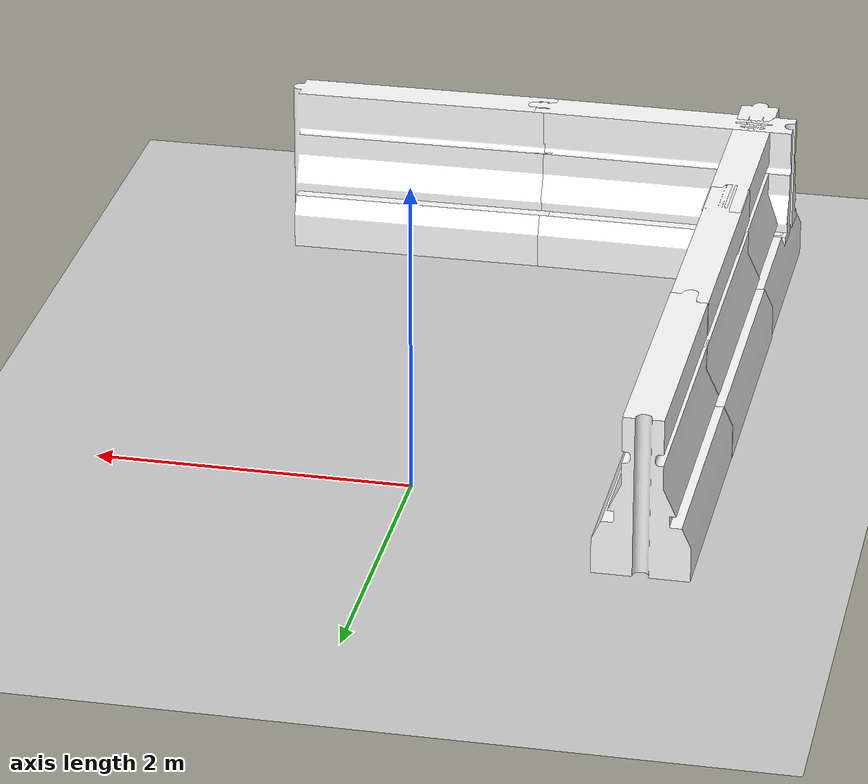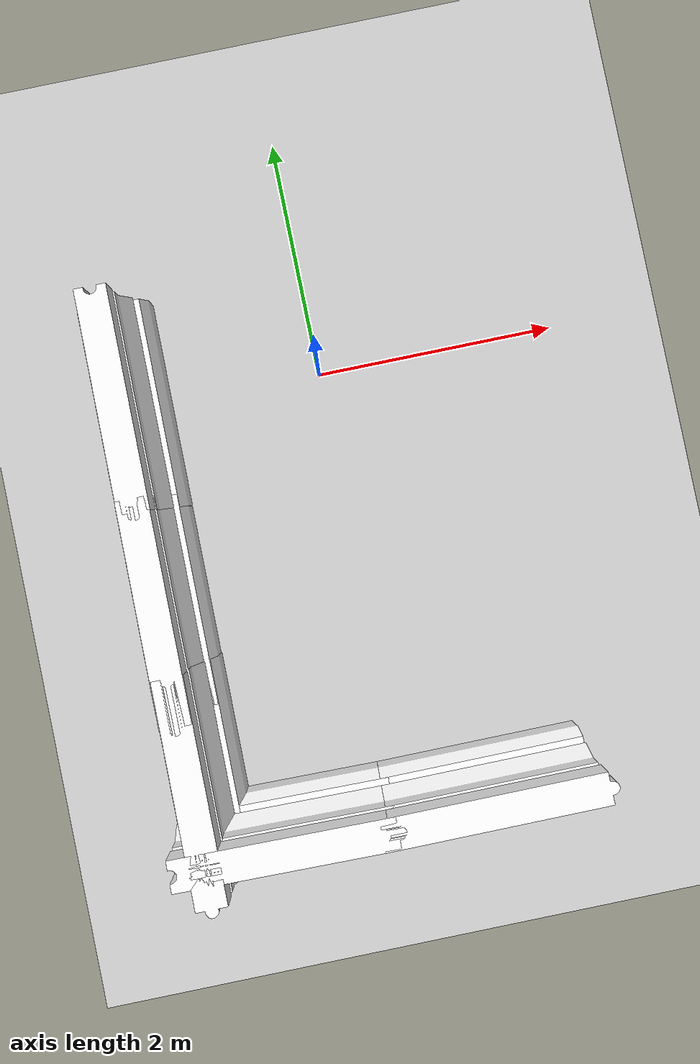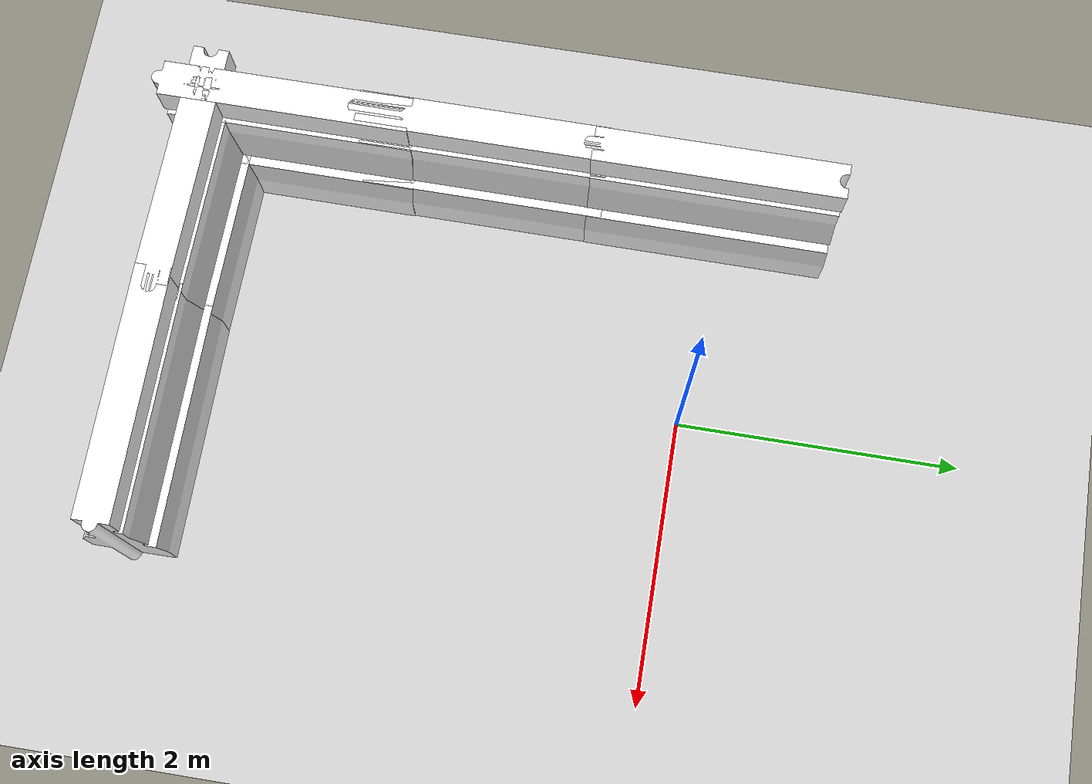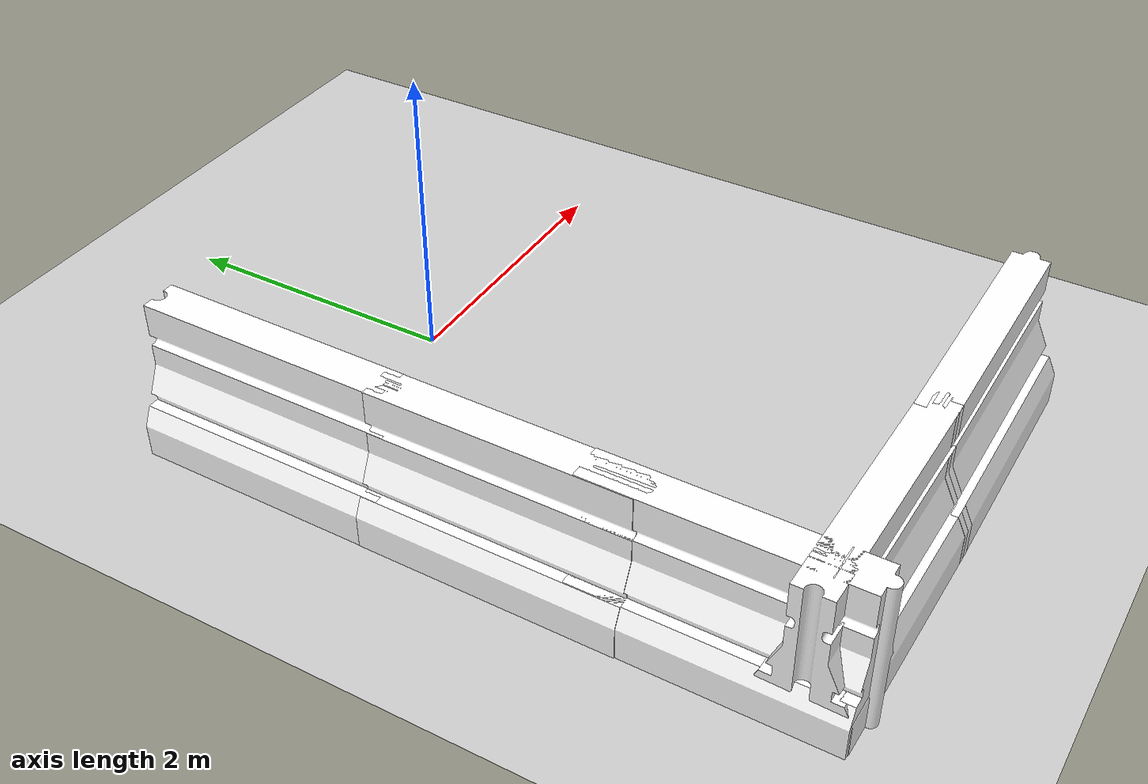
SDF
<sdf version="1.4">
 <world name="default">
  <model name="ground_plane">
   <static>1</static>
   <link name="link">
    <collision name="collision">
     <geometry><plane><normal>0 0 1</normal><size>100 100</size></plane></geometry>
     <surface><friction><ode><mu>100</mu><mu2>50</mu2></ode></friction></surface>
    </collision>
    <visual name="visual">
     <cast_shadows>0</cast_shadows>
     <geometry><plane><normal>0 0 1</normal><size>100 100</size></plane></geometry>
     <material>
      <script><uri>file://media/materials/scripts/gazebo.material</uri><name>Gazebo/Grey</name></script>
     </material>
    </visual>
    <velocity_decay><linear>0</linear><angular>0</angular></velocity_decay>
   </link>
  </model>
  <model name="drc_practice_white_jersey_barrier_5">
   <static>1</static>
   <link name="link">
    <visual name="visual">
     <geometry>
      <mesh><uri>model://drc_practice_white_jersey_barrier/meshes/jersey_barrier.dae</uri></mesh>
     </geometry>
    </visual>
    <collision name="collision">
     <geometry>
      <mesh><uri>model://drc_practice_white_jersey_barrier/meshes/jersey_barrier.dae</uri></mesh>
     </geometry>
    </collision>
    <velocity_decay><linear>0</linear><angular>0</angular></velocity_decay>
   </link>
   <pose>-1.57169 0 0 0 -0 0</pose>
  </model>
  <model name="drc_practice_white_jersey_barrier_6">
   <static>1</static>
   <link name="link">
    <visual name="visual">
     <geometry>
      <mesh><uri>model://drc_practice_white_jersey_barrier/meshes/jersey_barrier.dae</uri></mesh>
     </geometry>
    </visual>
    <collision name="collision">
     <geometry>
      <mesh><uri>model://drc_practice_white_jersey_barrier/meshes/jersey_barrier.dae</uri></mesh>
     </geometry>
    </collision>
    <velocity_decay><linear>0</linear><angular>0</angular></velocity_decay>
   </link>
   <pose>-0.985456 -3.58492 0 0 -0 1.56099</pose>
  </model>
  <model name="drc_practice_white_jersey_barrier">
   <static>1</static>
   <link name="link">
    <visual name="visual">
     <geometry>
      <mesh><uri>model://drc_practice_white_jersey_barrier/meshes/jersey_barrier.dae</uri></mesh>
     </geometry>
    </visual>
    <collision name="collision">
     <geometry>
      <mesh><uri>model://drc_practice_white_jersey_barrier/meshes/jersey_barrier.dae</uri></mesh>
     </geometry>
    </collision>
    <velocity_decay><linear>0</linear><angular>0</angular></velocity_decay>
   </link>
   <pose>-1.58186 -1.63112 0 0 -0 0</pose>
  </model>
  <model name="drc_practice_white_jersey_barrier_3">
   <static>1</static>
   <link name="link">
    <visual name="visual">
     <geometry>
      <mesh><uri>model://drc_practice_white_jersey_barrier/meshes/jersey_barrier.dae</uri></mesh>
     </geometry>
    </visual>
    <collision name="collision">
     <geometry>
      <mesh><uri>model://drc_practice_white_jersey_barrier/meshes/jersey_barrier.dae</uri></mesh>
     </geometry>
    </collision>
    <velocity_decay><linear>0</linear><angular>0</angular></velocity_decay>
   </link>
   <pose>-1.5823 -3 0 0 -0 0</pose>
  </model>
  <model name="drc_practice_white_jersey_barrier_4">
   <static>1</static>
   <link name="link">
    <visual name="visual">
     <geometry>
      <mesh><uri>model://drc_practice_white_jersey_barrier/meshes/jersey_barrier.dae</uri></mesh>
     </geometry>
    </visual>
    <collision name="collision">
     <geometry>
      <mesh><uri>model://drc_practice_white_jersey_barrier/meshes/jersey_barrier.dae</uri></mesh>
     </geometry>
    </collision>
    <velocity_decay><linear>0</linear><angular>0</angular></velocity_decay>
   </link>
   <pose>0.630209 -3.59422 0 0 -0 1.57845</pose>
  </model>
 </world>
</sdf>
